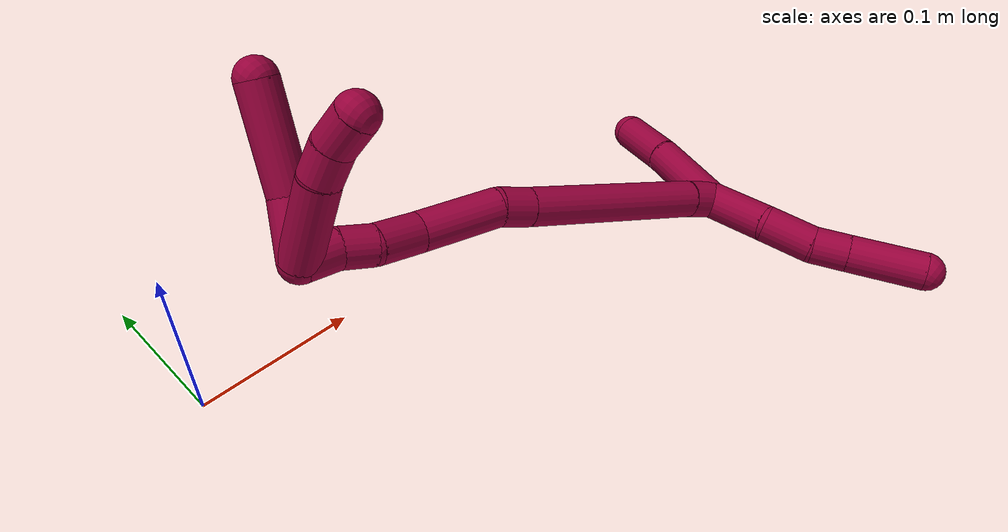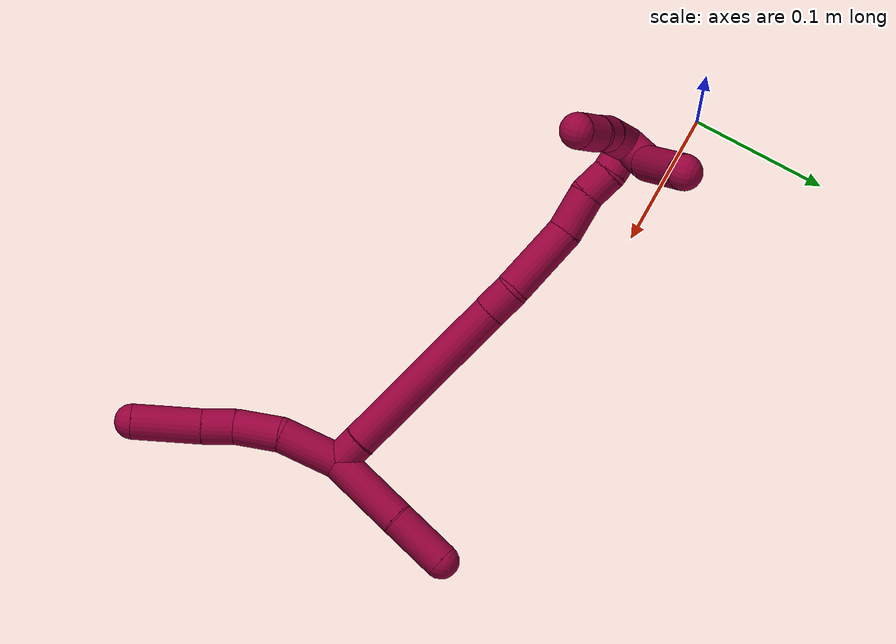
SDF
<sdf version="1.7">
 <world name="default">
  <model name="8">
   <static>0</static>
   <link name="8">
    <collision name="collision-cylinder-e_1_2_8">
     <pose>0.000739 0.006663 0.020792 -0.310127 0.033822 -0.005288</pose>
     <geometry><cylinder><radius>0.0125</radius><length>0.043693</length></cylinder></geometry>
     <surface>
      <friction><ode><mu>1.16</mu><mu2>1.16</mu2><slip1>0</slip1><slip2>0</slip2></ode></friction>
      <contact><ode><kp>1e+06</kp><kd>1</kd><max_vel>0</max_vel><min_depth>0.001</min_depth></ode></contact>
     </surface>
    </collision>
    <visual name="visual-cylinder-e_1_2_8">
     <pose>0.000739 0.006663 0.020792 -0.310127 0.033822 -0.005288</pose>
     <geometry><cylinder><radius>0.0125</radius><length>0.043693</length></cylinder></geometry>
     <material><ambient>0.584314 0 0.227451 1</ambient></material>
    </visual>
    <collision name="collision-cylinder-e_2_8_9">
     <pose>0.004806 0.014157 0.057929 -0.050741 0.200632 -0.005108</pose>
     <geometry><cylinder><radius>0.0125</radius><length>0.0334</length></cylinder></geometry>
     <surface>
      <friction><ode><mu>1.16</mu><mu2>1.16</mu2><slip1>0</slip1><slip2>0</slip2></ode></friction>
      <contact><ode><kp>1e+06</kp><kd>1</kd><max_vel>0</max_vel><min_depth>0.001</min_depth></ode></contact>
     </surface>
    </collision>
    <visual name="visual-cylinder-e_2_8_9">
     <pose>0.004806 0.014157 0.057929 -0.050741 0.200632 -0.005108</pose>
     <geometry><cylinder><radius>0.0125</radius><length>0.0334</length></cylinder></geometry>
     <material><ambient>0.584314 0 0.227451 1</ambient></material>
    </visual>
    <collision name="collision-cylinder-e_3_9_10">
     <pose>0.012834 0.015958 0.085007 -0.090261 0.411276 -0.018839</pose>
     <geometry><cylinder><radius>0.0125</radius><length>0.023516</length></cylinder></geometry>
     <surface>
      <friction><ode><mu>1.16</mu><mu2>1.16</mu2><slip1>0</slip1><slip2>0</slip2></ode></friction>
      <contact><ode><kp>1e+06</kp><kd>1</kd><max_vel>0</max_vel><min_depth>0.001</min_depth></ode></contact>
     </surface>
    </collision>
    <visual name="visual-cylinder-e_3_9_10">
     <pose>0.012834 0.015958 0.085007 -0.090261 0.411276 -0.018839</pose>
     <geometry><cylinder><radius>0.0125</radius><length>0.023516</length></cylinder></geometry>
     <material><ambient>0.584314 0 0.227451 1</ambient></material>
    </visual>
    <collision name="collision-cylinder-e_4_10_6">
     <pose>0.026566 0.020608 0.118429 -0.160705 0.374357 -0.0305</pose>
     <geometry><cylinder><radius>0.0125</radius><length>0.049391</length></cylinder></geometry>
     <surface>
      <friction><ode><mu>1.16</mu><mu2>1.16</mu2><slip1>0</slip1><slip2>0</slip2></ode></friction>
      <contact><ode><kp>1e+06</kp><kd>1</kd><max_vel>0</max_vel><min_depth>0.001</min_depth></ode></contact>
     </surface>
    </collision>
    <visual name="visual-cylinder-e_4_10_6">
     <pose>0.026566 0.020608 0.118429 -0.160705 0.374357 -0.0305</pose>
     <geometry><cylinder><radius>0.0125</radius><length>0.049391</length></cylinder></geometry>
     <material><ambient>0.584314 0 0.227451 1</ambient></material>
    </visual>
    <collision name="collision-cylinder-e_1_2_11">
     <pose>0.008798 -0.009073 -0.026028 2.80619 0.308955 1.4873</pose>
     <geometry><cylinder><radius>0.0125</radius><length>0.057867</length></cylinder></geometry>
     <surface>
      <friction><ode><mu>1.16</mu><mu2>1.16</mu2><slip1>0</slip1><slip2>0</slip2></ode></friction>
      <contact><ode><kp>1e+06</kp><kd>1</kd><max_vel>0</max_vel><min_depth>0.001</min_depth></ode></contact>
     </surface>
    </collision>
    <visual name="visual-cylinder-e_1_2_11">
     <pose>0.008798 -0.009073 -0.026028 2.80619 0.308955 1.4873</pose>
     <geometry><cylinder><radius>0.0125</radius><length>0.057867</length></cylinder></geometry>
     <material><ambient>0.584314 0 0.227451 1</ambient></material>
    </visual>
    <collision name="collision-cylinder-e_2_11_5">
     <pose>0.023143 -0.026612 -0.07053 2.71188 0.266511 1.1017</pose>
     <geometry><cylinder><radius>0.0125</radius><length>0.042133</length></cylinder></geometry>
     <surface>
      <friction><ode><mu>1.16</mu><mu2>1.16</mu2><slip1>0</slip1><slip2>0</slip2></ode></friction>
      <contact><ode><kp>1e+06</kp><kd>1</kd><max_vel>0</max_vel><min_depth>0.001</min_depth></ode></contact>
     </surface>
    </collision>
    <visual name="visual-cylinder-e_2_11_5">
     <pose>0.023143 -0.026612 -0.07053 2.71188 0.266511 1.1017</pose>
     <geometry><cylinder><radius>0.0125</radius><length>0.042133</length></cylinder></geometry>
     <material><ambient>0.584314 0 0.227451 1</ambient></material>
    </visual>
    <collision name="collision-cylinder-e_1_2_12">
     <pose>-0.008216 0.00467 -0.005237 -2.41337 -0.863955 1.76001</pose>
     <geometry><cylinder><radius>0.0125</radius><length>0.02161</length></cylinder></geometry>
     <surface>
      <friction><ode><mu>1.16</mu><mu2>1.16</mu2><slip1>0</slip1><slip2>0</slip2></ode></friction>
      <contact><ode><kp>1e+06</kp><kd>1</kd><max_vel>0</max_vel><min_depth>0.001</min_depth></ode></contact>
     </surface>
    </collision>
    <visual name="visual-cylinder-e_1_2_12">
     <pose>-0.008216 0.00467 -0.005237 -2.41337 -0.863955 1.76001</pose>
     <geometry><cylinder><radius>0.0125</radius><length>0.02161</length></cylinder></geometry>
     <material><ambient>0.584314 0 0.227451 1</ambient></material>
    </visual>
    <collision name="collision-cylinder-e_2_12_13">
     <pose>-0.067301 0.034244 -0.039868 -2.43869 -0.922608 1.87048</pose>
     <geometry><cylinder><radius>0.0125</radius><length>0.127622</length></cylinder></geometry>
     <surface>
      <friction><ode><mu>1.16</mu><mu2>1.16</mu2><slip1>0</slip1><slip2>0</slip2></ode></friction>
      <contact><ode><kp>1e+06</kp><kd>1</kd><max_vel>0</max_vel><min_depth>0.001</min_depth></ode></contact>
     </surface>
    </collision>
    <visual name="visual-cylinder-e_2_12_13">
     <pose>-0.067301 0.034244 -0.039868 -2.43869 -0.922608 1.87048</pose>
     <geometry><cylinder><radius>0.0125</radius><length>0.127622</length></cylinder></geometry>
     <material><ambient>0.584314 0 0.227451 1</ambient></material>
    </visual>
    <collision name="collision-cylinder-e_3_13_14">
     <pose>-0.126581 0.063865 -0.074454 -2.40413 -0.875704 1.76155</pose>
     <geometry><cylinder><radius>0.0125</radius><length>0.021904</length></cylinder></geometry>
     <surface>
      <friction><ode><mu>1.16</mu><mu2>1.16</mu2><slip1>0</slip1><slip2>0</slip2></ode></friction>
      <contact><ode><kp>1e+06</kp><kd>1</kd><max_vel>0</max_vel><min_depth>0.001</min_depth></ode></contact>
     </surface>
    </collision>
    <visual name="visual-cylinder-e_3_13_14">
     <pose>-0.126581 0.063865 -0.074454 -2.40413 -0.875704 1.76155</pose>
     <geometry><cylinder><radius>0.0125</radius><length>0.021904</length></cylinder></geometry>
     <material><ambient>0.584314 0 0.227451 1</ambient></material>
    </visual>
    <collision name="collision-cylinder-e_4_14_15">
     <pose>-0.159644 0.074504 -0.088816 -2.56811 -1.15393 2.29081</pose>
     <geometry><cylinder><radius>0.0125</radius><length>0.05392</length></cylinder></geometry>
     <surface>
      <friction><ode><mu>1.16</mu><mu2>1.16</mu2><slip1>0</slip1><slip2>0</slip2></ode></friction>
      <contact><ode><kp>1e+06</kp><kd>1</kd><max_vel>0</max_vel><min_depth>0.001</min_depth></ode></contact>
     </surface>
    </collision>
    <visual name="visual-cylinder-e_4_14_15">
     <pose>-0.159644 0.074504 -0.088816 -2.56811 -1.15393 2.29081</pose>
     <geometry><cylinder><radius>0.0125</radius><length>0.05392</length></cylinder></geometry>
     <material><ambient>0.584314 0 0.227451 1</ambient></material>
    </visual>
    <collision name="collision-cylinder-e_5_15_16">
     <pose>-0.197657 0.087157 -0.101208 -2.01737 -1.06151 1.50021</pose>
     <geometry><cylinder><radius>0.0125</radius><length>0.030609</length></cylinder></geometry>
     <surface>
      <friction><ode><mu>1.16</mu><mu2>1.16</mu2><slip1>0</slip1><slip2>0</slip2></ode></friction>
      <contact><ode><kp>1e+06</kp><kd>1</kd><max_vel>0</max_vel><min_depth>0.001</min_depth></ode></contact>
     </surface>
    </collision>
    <visual name="visual-cylinder-e_5_15_16">
     <pose>-0.197657 0.087157 -0.101208 -2.01737 -1.06151 1.50021</pose>
     <geometry><cylinder><radius>0.0125</radius><length>0.030609</length></cylinder></geometry>
     <material><ambient>0.584314 0 0.227451 1</ambient></material>
    </visual>
    <collision name="collision-cylinder-e_6_16_17">
     <pose>-0.219628 0.097624 -0.10946 -2.50258 -0.941617 1.98884</pose>
     <geometry><cylinder><radius>0.0125</radius><length>0.021297</length></cylinder></geometry>
     <surface>
      <friction><ode><mu>1.16</mu><mu2>1.16</mu2><slip1>0</slip1><slip2>0</slip2></ode></friction>
      <contact><ode><kp>1e+06</kp><kd>1</kd><max_vel>0</max_vel><min_depth>0.001</min_depth></ode></contact>
     </surface>
    </collision>
    <visual name="visual-cylinder-e_6_16_17">
     <pose>-0.219628 0.097624 -0.10946 -2.50258 -0.941617 1.98884</pose>
     <geometry><cylinder><radius>0.0125</radius><length>0.021297</length></cylinder></geometry>
     <material><ambient>0.584314 0 0.227451 1</ambient></material>
    </visual>
    <collision name="collision-cylinder-e_7_17_1">
     <pose>-0.238774 0.10534 -0.116908 -2.11687 -1.15471 1.71705</pose>
     <geometry><cylinder><radius>0.0125</radius><length>0.023039</length></cylinder></geometry>
     <surface>
      <friction><ode><mu>1.16</mu><mu2>1.16</mu2><slip1>0</slip1><slip2>0</slip2></ode></friction>
      <contact><ode><kp>1e+06</kp><kd>1</kd><max_vel>0</max_vel><min_depth>0.001</min_depth></ode></contact>
     </surface>
    </collision>
    <visual name="visual-cylinder-e_7_17_1">
     <pose>-0.238774 0.10534 -0.116908 -2.11687 -1.15471 1.71705</pose>
     <geometry><cylinder><radius>0.0125</radius><length>0.023039</length></cylinder></geometry>
     <material><ambient>0.584314 0 0.227451 1</ambient></material>
    </visual>
    <collision name="collision-cylinder-e_1_1_18">
     <pose>-0.23948 0.117256 -0.132171 -2.58811 0.57712 -1.61491</pose>
     <geometry><cylinder><radius>0.0125</radius><length>0.036035</length></cylinder></geometry>
     <surface>
      <friction><ode><mu>1.16</mu><mu2>1.16</mu2><slip1>0</slip1><slip2>0</slip2></ode></friction>
      <contact><ode><kp>1e+06</kp><kd>1</kd><max_vel>0</max_vel><min_depth>0.001</min_depth></ode></contact>
     </surface>
    </collision>
    <visual name="visual-cylinder-e_1_1_18">
     <pose>-0.23948 0.117256 -0.132171 -2.58811 0.57712 -1.61491</pose>
     <geometry><cylinder><radius>0.0125</radius><length>0.036035</length></cylinder></geometry>
     <material><ambient>0.584314 0 0.227451 1</ambient></material>
    </visual>
    <collision name="collision-cylinder-e_2_18_4">
     <pose>-0.217197 0.146095 -0.165775 -2.35278 0.399917 -0.906267</pose>
     <geometry><cylinder><radius>0.0125</radius><length>0.063965</length></cylinder></geometry>
     <surface>
      <friction><ode><mu>1.16</mu><mu2>1.16</mu2><slip1>0</slip1><slip2>0</slip2></ode></friction>
      <contact><ode><kp>1e+06</kp><kd>1</kd><max_vel>0</max_vel><min_depth>0.001</min_depth></ode></contact>
     </surface>
    </collision>
    <visual name="visual-cylinder-e_2_18_4">
     <pose>-0.217197 0.146095 -0.165775 -2.35278 0.399917 -0.906267</pose>
     <geometry><cylinder><radius>0.0125</radius><length>0.063965</length></cylinder></geometry>
     <material><ambient>0.584314 0 0.227451 1</ambient></material>
    </visual>
    <collision name="collision-cylinder-e_1_1_19">
     <pose>-0.235451 0.133736 -0.120541 -1.62051 0.51574 -0.540801</pose>
     <geometry><cylinder><radius>0.0125</radius><length>0.056205</length></cylinder></geometry>
     <surface>
      <friction><ode><mu>1.16</mu><mu2>1.16</mu2><slip1>0</slip1><slip2>0</slip2></ode></friction>
      <contact><ode><kp>1e+06</kp><kd>1</kd><max_vel>0</max_vel><min_depth>0.001</min_depth></ode></contact>
     </surface>
    </collision>
    <visual name="visual-cylinder-e_1_1_19">
     <pose>-0.235451 0.133736 -0.120541 -1.62051 0.51574 -0.540801</pose>
     <geometry><cylinder><radius>0.0125</radius><length>0.056205</length></cylinder></geometry>
     <material><ambient>0.584314 0 0.227451 1</ambient></material>
    </visual>
    <collision name="collision-cylinder-e_2_19_20">
     <pose>-0.215129 0.166402 -0.121685 -1.56222 0.664502 -0.65923</pose>
     <geometry><cylinder><radius>0.0125</radius><length>0.020957</length></cylinder></geometry>
     <surface>
      <friction><ode><mu>1.16</mu><mu2>1.16</mu2><slip1>0</slip1><slip2>0</slip2></ode></friction>
      <contact><ode><kp>1e+06</kp><kd>1</kd><max_vel>0</max_vel><min_depth>0.001</min_depth></ode></contact>
     </surface>
    </collision>
    <visual name="visual-cylinder-e_2_19_20">
     <pose>-0.215129 0.166402 -0.121685 -1.56222 0.664502 -0.65923</pose>
     <geometry><cylinder><radius>0.0125</radius><length>0.020957</length></cylinder></geometry>
     <material><ambient>0.584314 0 0.227451 1</ambient></material>
    </visual>
    <collision name="collision-cylinder-e_3_20_3">
     <pose>-0.201915 0.183394 -0.118724 -1.25155 0.632719 -0.464593</pose>
     <geometry><cylinder><radius>0.0125</radius><length>0.022838</length></cylinder></geometry>
     <surface>
      <friction><ode><mu>1.16</mu><mu2>1.16</mu2><slip1>0</slip1><slip2>0</slip2></ode></friction>
      <contact><ode><kp>1e+06</kp><kd>1</kd><max_vel>0</max_vel><min_depth>0.001</min_depth></ode></contact>
     </surface>
    </collision>
    <visual name="visual-cylinder-e_3_20_3">
     <pose>-0.201915 0.183394 -0.118724 -1.25155 0.632719 -0.464593</pose>
     <geometry><cylinder><radius>0.0125</radius><length>0.022838</length></cylinder></geometry>
     <material><ambient>0.584314 0 0.227451 1</ambient></material>
    </visual>
    <collision name="collision-sphere-3">
     <pose>-0.195163 0.192137 -0.115834 0 -0 0</pose>
     <geometry><sphere><radius>0.0125</radius></sphere></geometry>
     <surface>
      <friction><ode><mu>1.16</mu><mu2>1.16</mu2><slip1>0</slip1><slip2>0</slip2></ode></friction>
      <contact><ode><kp>1e+06</kp><kd>1</kd><max_vel>0</max_vel><min_depth>0.001</min_depth></ode></contact>
     </surface>
    </collision>
    <visual name="visual-sphere-3">
     <pose>-0.195163 0.192137 -0.115834 0 -0 0</pose>
     <geometry><sphere><radius>0.0125</radius></sphere></geometry>
     <material><ambient>0.584314 0 0.227451 1</ambient></material>
    </visual>
    <collision name="collision-sphere-20">
     <pose>-0.208668 0.17465 -0.121614 0 -0 0</pose>
     <geometry><sphere><radius>0.0125</radius></sphere></geometry>
     <surface>
      <friction><ode><mu>1.16</mu><mu2>1.16</mu2><slip1>0</slip1><slip2>0</slip2></ode></friction>
      <contact><ode><kp>1e+06</kp><kd>1</kd><max_vel>0</max_vel><min_depth>0.001</min_depth></ode></contact>
     </surface>
    </collision>
    <visual name="visual-sphere-20">
     <pose>-0.208668 0.17465 -0.121614 0 -0 0</pose>
     <geometry><sphere><radius>0.0125</radius></sphere></geometry>
     <material><ambient>0.584314 0 0.227451 1</ambient></material>
    </visual>
    <collision name="collision-sphere-19">
     <pose>-0.221591 0.158153 -0.121756 0 -0 0</pose>
     <geometry><sphere><radius>0.0125</radius></sphere></geometry>
     <surface>
      <friction><ode><mu>1.16</mu><mu2>1.16</mu2><slip1>0</slip1><slip2>0</slip2></ode></friction>
      <contact><ode><kp>1e+06</kp><kd>1</kd><max_vel>0</max_vel><min_depth>0.001</min_depth></ode></contact>
     </surface>
    </collision>
    <visual name="visual-sphere-19">
     <pose>-0.221591 0.158153 -0.121756 0 -0 0</pose>
     <geometry><sphere><radius>0.0125</radius></sphere></geometry>
     <material><ambient>0.584314 0 0.227451 1</ambient></material>
    </visual>
    <collision name="collision-sphere-11">
     <pose>0.017595 -0.018145 -0.052055 0 -0 0</pose>
     <geometry><sphere><radius>0.0125</radius></sphere></geometry>
     <surface>
      <friction><ode><mu>1.16</mu><mu2>1.16</mu2><slip1>0</slip1><slip2>0</slip2></ode></friction>
      <contact><ode><kp>1e+06</kp><kd>1</kd><max_vel>0</max_vel><min_depth>0.001</min_depth></ode></contact>
     </surface>
    </collision>
    <visual name="visual-sphere-11">
     <pose>0.017595 -0.018145 -0.052055 0 -0 0</pose>
     <geometry><sphere><radius>0.0125</radius></sphere></geometry>
     <material><ambient>0.584314 0 0.227451 1</ambient></material>
    </visual>
    <collision name="collision-sphere-6">
     <pose>0.035596 0.024285 0.141118 0 -0 0</pose>
     <geometry><sphere><radius>0.0125</radius></sphere></geometry>
     <surface>
      <friction><ode><mu>1.16</mu><mu2>1.16</mu2><slip1>0</slip1><slip2>0</slip2></ode></friction>
      <contact><ode><kp>1e+06</kp><kd>1</kd><max_vel>0</max_vel><min_depth>0.001</min_depth></ode></contact>
     </surface>
    </collision>
    <visual name="visual-sphere-6">
     <pose>0.035596 0.024285 0.141118 0 -0 0</pose>
     <geometry><sphere><radius>0.0125</radius></sphere></geometry>
     <material><ambient>0.584314 0 0.227451 1</ambient></material>
    </visual>
    <collision name="collision-sphere-10">
     <pose>0.017535 0.01693 0.09574 0 -0 0</pose>
     <geometry><sphere><radius>0.0125</radius></sphere></geometry>
     <surface>
      <friction><ode><mu>1.16</mu><mu2>1.16</mu2><slip1>0</slip1><slip2>0</slip2></ode></friction>
      <contact><ode><kp>1e+06</kp><kd>1</kd><max_vel>0</max_vel><min_depth>0.001</min_depth></ode></contact>
     </surface>
    </collision>
    <visual name="visual-sphere-10">
     <pose>0.017535 0.01693 0.09574 0 -0 0</pose>
     <geometry><sphere><radius>0.0125</radius></sphere></geometry>
     <material><ambient>0.584314 0 0.227451 1</ambient></material>
    </visual>
    <collision name="collision-sphere-9">
     <pose>0.008134 0.014987 0.074273 0 -0 0</pose>
     <geometry><sphere><radius>0.0125</radius></sphere></geometry>
     <surface>
      <friction><ode><mu>1.16</mu><mu2>1.16</mu2><slip1>0</slip1><slip2>0</slip2></ode></friction>
      <contact><ode><kp>1e+06</kp><kd>1</kd><max_vel>0</max_vel><min_depth>0.001</min_depth></ode></contact>
     </surface>
    </collision>
    <visual name="visual-sphere-9">
     <pose>0.008134 0.014987 0.074273 0 -0 0</pose>
     <geometry><sphere><radius>0.0125</radius></sphere></geometry>
     <material><ambient>0.584314 0 0.227451 1</ambient></material>
    </visual>
    <collision name="collision-sphere-2">
     <geometry><sphere><radius>0.0125</radius></sphere></geometry>
     <surface>
      <friction><ode><mu>1.16</mu><mu2>1.16</mu2><slip1>0</slip1><slip2>0</slip2></ode></friction>
      <contact><ode><kp>1e+06</kp><kd>1</kd><max_vel>0</max_vel><min_depth>0.001</min_depth></ode></contact>
     </surface>
    </collision>
    <visual name="visual-sphere-2">
     <geometry><sphere><radius>0.0125</radius></sphere></geometry>
     <material><ambient>0.584314 0 0.227451 1</ambient></material>
    </visual>
    <collision name="collision-sphere-8">
     <pose>0.001478 0.013327 0.041585 0 -0 0</pose>
     <geometry><sphere><radius>0.0125</radius></sphere></geometry>
     <surface>
      <friction><ode><mu>1.16</mu><mu2>1.16</mu2><slip1>0</slip1><slip2>0</slip2></ode></friction>
      <contact><ode><kp>1e+06</kp><kd>1</kd><max_vel>0</max_vel><min_depth>0.001</min_depth></ode></contact>
     </surface>
    </collision>
    <visual name="visual-sphere-8">
     <pose>0.001478 0.013327 0.041585 0 -0 0</pose>
     <geometry><sphere><radius>0.0125</radius></sphere></geometry>
     <material><ambient>0.584314 0 0.227451 1</ambient></material>
    </visual>
    <collision name="collision-sphere-5">
     <pose>0.028692 -0.035079 -0.089005 0 -0 0</pose>
     <geometry><sphere><radius>0.0125</radius></sphere></geometry>
     <surface>
      <friction><ode><mu>1.16</mu><mu2>1.16</mu2><slip1>0</slip1><slip2>0</slip2></ode></friction>
      <contact><ode><kp>1e+06</kp><kd>1</kd><max_vel>0</max_vel><min_depth>0.001</min_depth></ode></contact>
     </surface>
    </collision>
    <visual name="visual-sphere-5">
     <pose>0.028692 -0.035079 -0.089005 0 -0 0</pose>
     <geometry><sphere><radius>0.0125</radius></sphere></geometry>
     <material><ambient>0.584314 0 0.227451 1</ambient></material>
    </visual>
    <collision name="collision-sphere-12">
     <pose>-0.016432 0.00934 -0.010474 0 -0 0</pose>
     <geometry><sphere><radius>0.0125</radius></sphere></geometry>
     <surface>
      <friction><ode><mu>1.16</mu><mu2>1.16</mu2><slip1>0</slip1><slip2>0</slip2></ode></friction>
      <contact><ode><kp>1e+06</kp><kd>1</kd><max_vel>0</max_vel><min_depth>0.001</min_depth></ode></contact>
     </surface>
    </collision>
    <visual name="visual-sphere-12">
     <pose>-0.016432 0.00934 -0.010474 0 -0 0</pose>
     <geometry><sphere><radius>0.0125</radius></sphere></geometry>
     <material><ambient>0.584314 0 0.227451 1</ambient></material>
    </visual>
    <collision name="collision-sphere-13">
     <pose>-0.11817 0.059149 -0.069262 0 -0 0</pose>
     <geometry><sphere><radius>0.0125</radius></sphere></geometry>
     <surface>
      <friction><ode><mu>1.16</mu><mu2>1.16</mu2><slip1>0</slip1><slip2>0</slip2></ode></friction>
      <contact><ode><kp>1e+06</kp><kd>1</kd><max_vel>0</max_vel><min_depth>0.001</min_depth></ode></contact>
     </surface>
    </collision>
    <visual name="visual-sphere-13">
     <pose>-0.11817 0.059149 -0.069262 0 -0 0</pose>
     <geometry><sphere><radius>0.0125</radius></sphere></geometry>
     <material><ambient>0.584314 0 0.227451 1</ambient></material>
    </visual>
    <collision name="collision-sphere-14">
     <pose>-0.134992 0.068582 -0.079646 0 -0 0</pose>
     <geometry><sphere><radius>0.0125</radius></sphere></geometry>
     <surface>
      <friction><ode><mu>1.16</mu><mu2>1.16</mu2><slip1>0</slip1><slip2>0</slip2></ode></friction>
      <contact><ode><kp>1e+06</kp><kd>1</kd><max_vel>0</max_vel><min_depth>0.001</min_depth></ode></contact>
     </surface>
    </collision>
    <visual name="visual-sphere-14">
     <pose>-0.134992 0.068582 -0.079646 0 -0 0</pose>
     <geometry><sphere><radius>0.0125</radius></sphere></geometry>
     <material><ambient>0.584314 0 0.227451 1</ambient></material>
    </visual>
    <collision name="collision-sphere-15">
     <pose>-0.184295 0.080427 -0.097985 0 -0 0</pose>
     <geometry><sphere><radius>0.0125</radius></sphere></geometry>
     <surface>
      <friction><ode><mu>1.16</mu><mu2>1.16</mu2><slip1>0</slip1><slip2>0</slip2></ode></friction>
      <contact><ode><kp>1e+06</kp><kd>1</kd><max_vel>0</max_vel><min_depth>0.001</min_depth></ode></contact>
     </surface>
    </collision>
    <visual name="visual-sphere-15">
     <pose>-0.184295 0.080427 -0.097985 0 -0 0</pose>
     <geometry><sphere><radius>0.0125</radius></sphere></geometry>
     <material><ambient>0.584314 0 0.227451 1</ambient></material>
    </visual>
    <collision name="collision-sphere-16">
     <pose>-0.211019 0.093887 -0.10443 0 -0 0</pose>
     <geometry><sphere><radius>0.0125</radius></sphere></geometry>
     <surface>
      <friction><ode><mu>1.16</mu><mu2>1.16</mu2><slip1>0</slip1><slip2>0</slip2></ode></friction>
      <contact><ode><kp>1e+06</kp><kd>1</kd><max_vel>0</max_vel><min_depth>0.001</min_depth></ode></contact>
     </surface>
    </collision>
    <visual name="visual-sphere-16">
     <pose>-0.211019 0.093887 -0.10443 0 -0 0</pose>
     <geometry><sphere><radius>0.0125</radius></sphere></geometry>
     <material><ambient>0.584314 0 0.227451 1</ambient></material>
    </visual>
    <collision name="collision-sphere-17">
     <pose>-0.228238 0.101361 -0.11449 0 -0 0</pose>
     <geometry><sphere><radius>0.0125</radius></sphere></geometry>
     <surface>
      <friction><ode><mu>1.16</mu><mu2>1.16</mu2><slip1>0</slip1><slip2>0</slip2></ode></friction>
      <contact><ode><kp>1e+06</kp><kd>1</kd><max_vel>0</max_vel><min_depth>0.001</min_depth></ode></contact>
     </surface>
    </collision>
    <visual name="visual-sphere-17">
     <pose>-0.228238 0.101361 -0.11449 0 -0 0</pose>
     <geometry><sphere><radius>0.0125</radius></sphere></geometry>
     <material><ambient>0.584314 0 0.227451 1</ambient></material>
    </visual>
    <collision name="collision-sphere-1">
     <pose>-0.24931 0.109319 -0.119326 0 -0 0</pose>
     <geometry><sphere><radius>0.0125</radius></sphere></geometry>
     <surface>
      <friction><ode><mu>1.16</mu><mu2>1.16</mu2><slip1>0</slip1><slip2>0</slip2></ode></friction>
      <contact><ode><kp>1e+06</kp><kd>1</kd><max_vel>0</max_vel><min_depth>0.001</min_depth></ode></contact>
     </surface>
    </collision>
    <visual name="visual-sphere-1">
     <pose>-0.24931 0.109319 -0.119326 0 -0 0</pose>
     <geometry><sphere><radius>0.0125</radius></sphere></geometry>
     <material><ambient>0.584314 0 0.227451 1</ambient></material>
    </visual>
    <collision name="collision-sphere-18">
     <pose>-0.229649 0.125193 -0.145016 0 -0 0</pose>
     <geometry><sphere><radius>0.0125</radius></sphere></geometry>
     <surface>
      <friction><ode><mu>1.16</mu><mu2>1.16</mu2><slip1>0</slip1><slip2>0</slip2></ode></friction>
      <contact><ode><kp>1e+06</kp><kd>1</kd><max_vel>0</max_vel><min_depth>0.001</min_depth></ode></contact>
     </surface>
    </collision>
    <visual name="visual-sphere-18">
     <pose>-0.229649 0.125193 -0.145016 0 -0 0</pose>
     <geometry><sphere><radius>0.0125</radius></sphere></geometry>
     <material><ambient>0.584314 0 0.227451 1</ambient></material>
    </visual>
    <collision name="collision-sphere-4">
     <pose>-0.204745 0.166997 -0.186535 0 -0 0</pose>
     <geometry><sphere><radius>0.0125</radius></sphere></geometry>
     <surface>
      <friction><ode><mu>1.16</mu><mu2>1.16</mu2><slip1>0</slip1><slip2>0</slip2></ode></friction>
      <contact><ode><kp>1e+06</kp><kd>1</kd><max_vel>0</max_vel><min_depth>0.001</min_depth></ode></contact>
     </surface>
    </collision>
    <visual name="visual-sphere-4">
     <pose>-0.204745 0.166997 -0.186535 0 -0 0</pose>
     <geometry><sphere><radius>0.0125</radius></sphere></geometry>
     <material><ambient>0.584314 0 0.227451 1</ambient></material>
    </visual>
    <inertial>
     <pose>-0.103948 0.061779 -0.054577 0 -0 0</pose>
     <mass>0.75</mass>
     <inertia><ixx>0.000122</ixx><ixy>0</ixy><ixz>0</ixz><iyy>0.0003</iyy><iyz>0</iyz><izz>9e-06</izz></inertia>
    </inertial>
   </link>
   <pose>0.344637 -0.099951 0.014956 1.82837 -0.240032 0.047309</pose>
  </model>
 </world>
</sdf>
